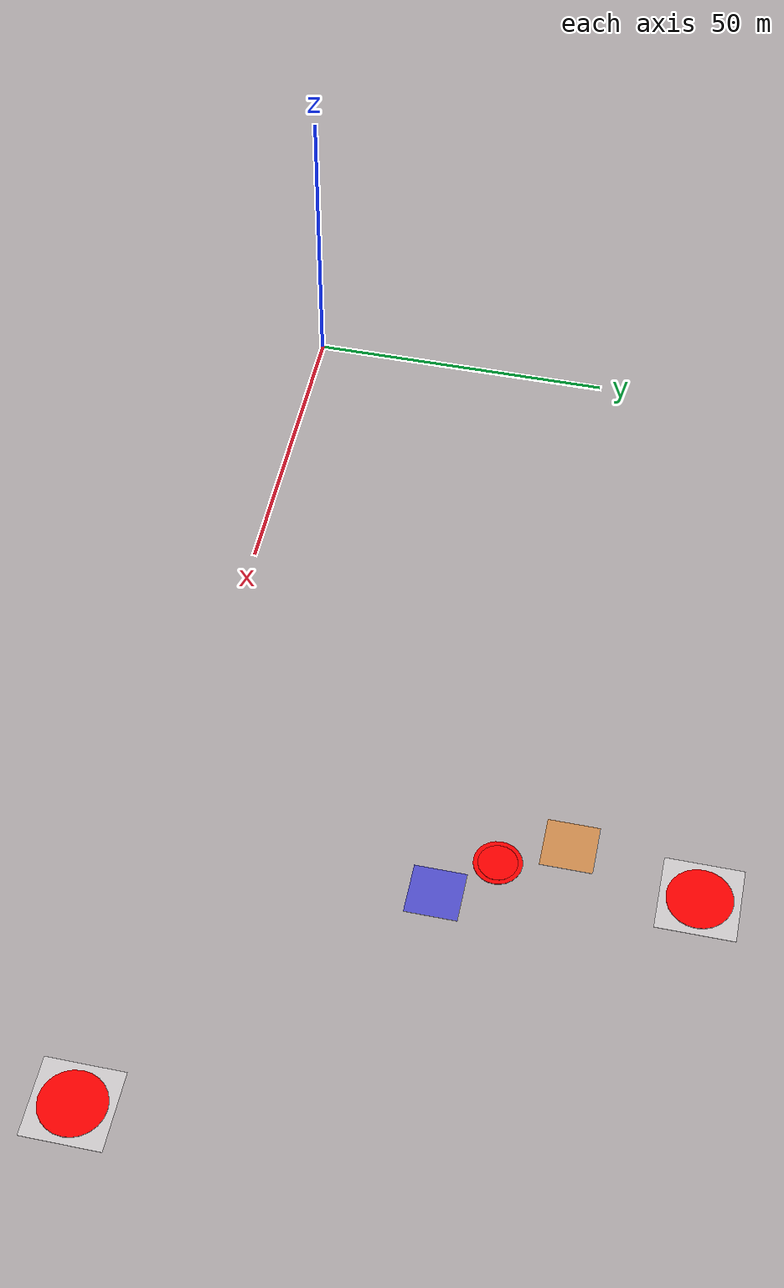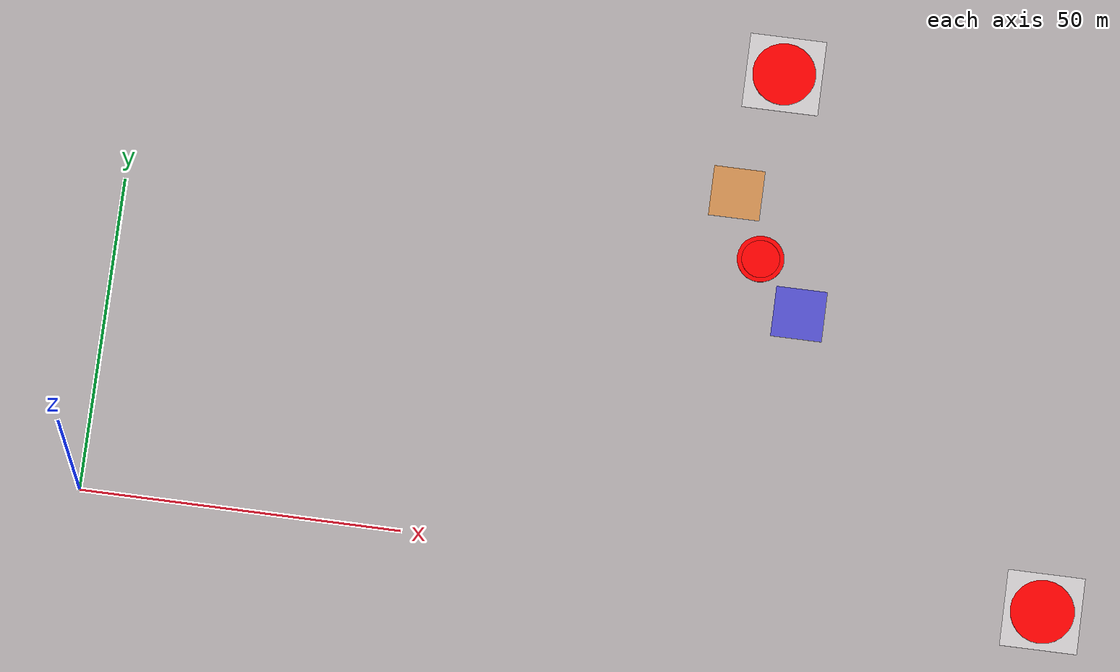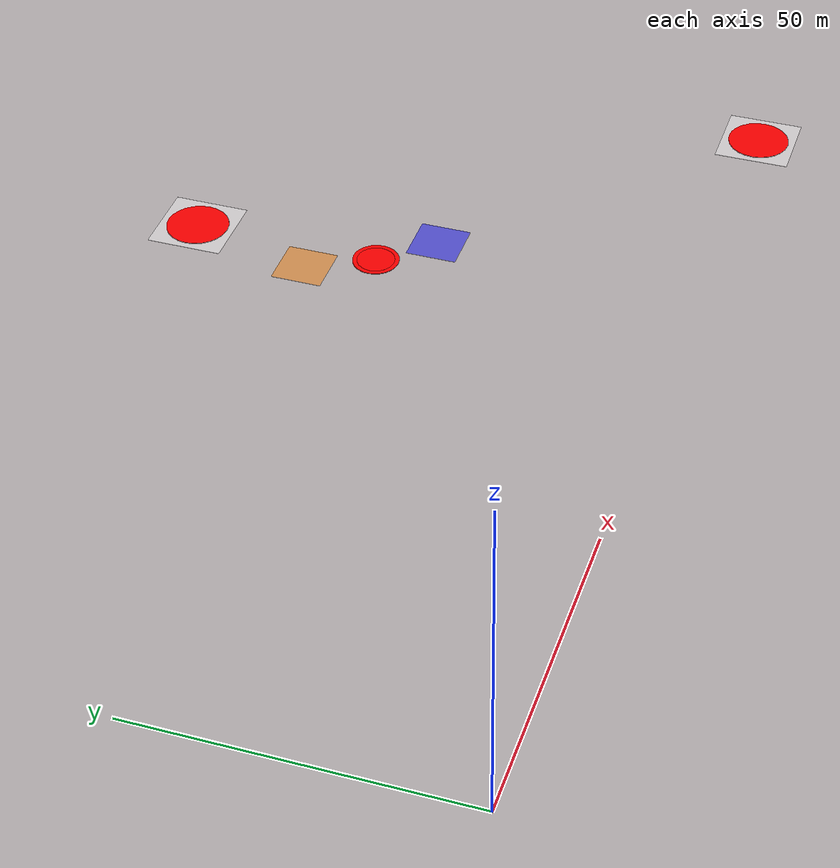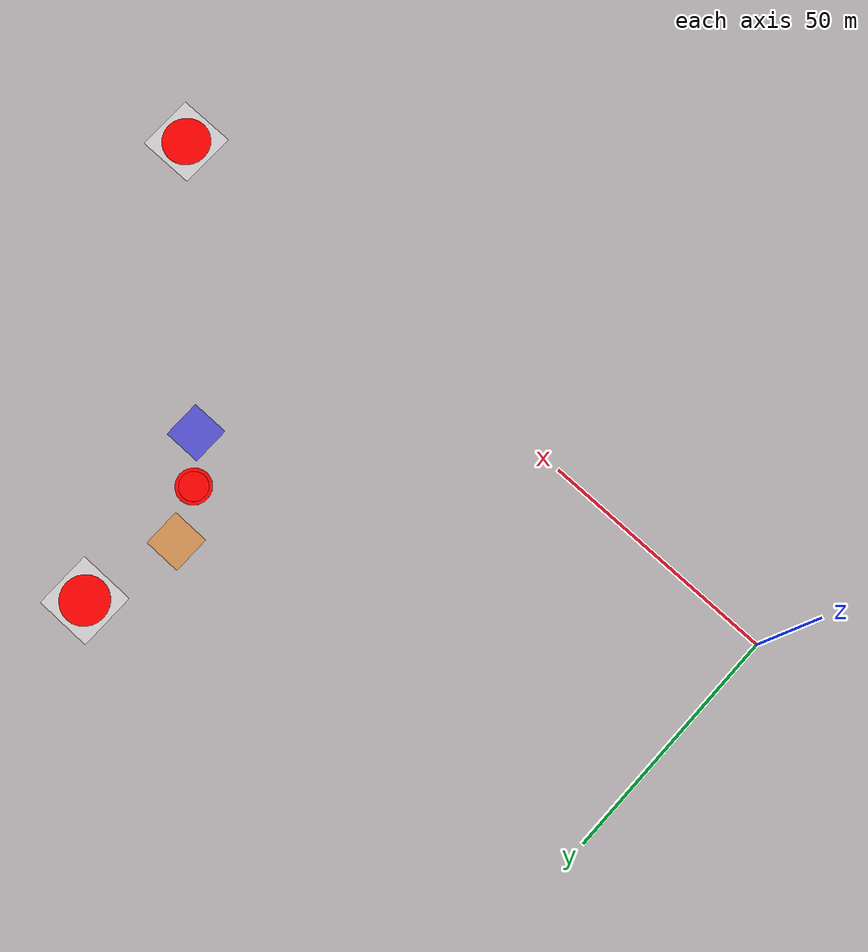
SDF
<sdf version="1.9">
 <world name="iris_runway">
  <physics name="1ms" type="ignore">
   <max_step_size>0.001</max_step_size>
   <real_time_factor>1</real_time_factor>
  </physics>
  <plugin filename="gz-sim-physics-system" name="gz::sim::systems::Physics"/>
  <plugin filename="gz-sim-sensors-system" name="gz::sim::systems::Sensors">
   <render_engine>ogre2</render_engine>
  </plugin>
  <plugin filename="gz-sim-user-commands-system" name="gz::sim::systems::UserCommands"/>
  <plugin filename="gz-sim-scene-broadcaster-system" name="gz::sim::systems::SceneBroadcaster"/>
  <plugin filename="gz-sim-air-pressure-system" name="gz::sim::systems::AirPressure"/>
  <plugin filename="gz-sim-air-speed-system" name="gz::sim::systems::AirSpeed"/>
  <plugin filename="gz-sim-altimeter-system" name="gz::sim::systems::Altimeter"/>
  <plugin filename="gz-sim-imu-system" name="gz::sim::systems::Imu"/>
  <plugin filename="gz-sim-magnetometer-system" name="gz::sim::systems::Magnetometer"/>
  <plugin filename="gz-sim-navsat-system" name="gz::sim::systems::NavSat"/>
  <scene><ambient>1.0 1.0 1.0</ambient><background>0.8 0.8 0.8</background></scene>
  <spherical_coordinates>
   <latitude_deg>-35.363262</latitude_deg>
   <longitude_deg>149.165237</longitude_deg>
   <elevation>10.0</elevation>
   <heading_deg>0</heading_deg>
   <surface_model>EARTH_WGS84</surface_model>
  </spherical_coordinates>
  <gravity>0 0 -9.8</gravity>
  <magnetic_field>5.5645e-06 2.28758e-05 -4.23884e-05</magnetic_field>
  <atmosphere type="adiabatic"/>
  <model name="helipad">
   <link name="background_link">
    <collision name="background_collision">
     <geometry><cylinder><radius>4</radius><length>0.11</length></cylinder></geometry>
    </collision>
    <visual name="background_visual_H1">
     <geometry><cylinder><radius>3.7</radius><length>0.1</length></cylinder></geometry>
     <material>
      <ambient>1 0 0 1</ambient>
      <diffuse>1 0 0 1</diffuse>
      <specular>0 0 0 1</specular>
      <emissive>0 0 0 0</emissive>
     </material>
     <pose>100 50 0 0 0 0</pose>
    </visual>
   </link>
   <link name="h_letter">
    <collision name="h_letter_collision">
     <geometry><cylinder><radius>3</radius><length>0.12</length></cylinder></geometry>
    </collision>
    <visual name="h_letter_visual">
     <geometry><cylinder><radius>3</radius><length>0.12</length></cylinder></geometry>
     <material>
      <ambient>1 0 0 1</ambient>
      <diffuse>1 0 0 1</diffuse>
      <specular>0 0 0 1</specular>
      <emissive>0 0 0 0</emissive>
     </material>
     <pose>100 50 0 0 0 0</pose>
    </visual>
   </link>
   <link name="hotspots">
    <visual name="background_visual_H5">
     <geometry><cylinder><radius>5</radius><length>0.1</length></cylinder></geometry>
     <material>
      <ambient>1 0 0 1</ambient>
      <diffuse>1 0 0 1</diffuse>
      <specular>0 0 0 1</specular>
      <emissive>0 0 0 0</emissive>
     </material>
     <pose>150 0 0.1 0 0 0</pose>
    </visual>
    <visual name="white_box_around_red_circle_H5">
     <geometry><box><size>12 12 0.1</size></box></geometry>
     <material>
      <ambient>1 1 1 0.5</ambient>
      <diffuse>1 1 1 0.5</diffuse>
      <specular>1 1 1 0.5</specular>
      <emissive>1 1 1 0</emissive>
     </material>
     <pose>150 0 0.06 0 0 0</pose>
    </visual>
    <visual name="boxyellow_51">
     <geometry><box><size>8 8 0.1</size></box></geometry>
     <material>
      <ambient>1 0.5 0 0.5</ambient>
      <diffuse>1 0.5 0 0.5</diffuse>
      <specular>1 0.5 0 0.5</specular>
      <emissive>1 0.5 0 0</emissive>
     </material>
     <pose>95 60 0.1 0 0 0</pose>
    </visual>
    <visual name="boxblue107_51">
     <geometry><box><size>8 8 0.1</size></box></geometry>
     <material>
      <ambient>0 0 1 0.5</ambient>
      <diffuse>0 0 1 0.5</diffuse>
      <specular>0 0 1 0.5</specular>
      <emissive>0 0 1 0</emissive>
     </material>
     <pose>107 42 0.1 0 0 0</pose>
    </visual>
   </link>
   <link name="hotspot_6">
    <visual name="background_visual_H6">
     <geometry><cylinder><radius>5</radius><length>0.1</length></cylinder></geometry>
     <material>
      <ambient>1 0 0 1</ambient>
      <diffuse>1 0 0 1</diffuse>
      <specular>0 0 0 1</specular>
      <emissive>0 0 0 0</emissive>
     </material>
     <pose>100 80 0.1 0 0 0</pose>
    </visual>
    <visual name="white_box_around_red_circle_H6">
     <geometry><box><size>12 12 0.1</size></box></geometry>
     <material>
      <ambient>1 1 1 0.5</ambient>
      <diffuse>1 1 1 0.5</diffuse>
      <specular>1 1 1 0.5</specular>
      <emissive>1 1 1 0</emissive>
     </material>
     <pose>100 80 0.06 0 0 0</pose>
    </visual>
   </link>
  </model>
  <model name="axes">
   <static>true</static>
   <link name="link">
    <visual name="r">
     <cast_shadows>false</cast_shadows>
     <pose>5 0 0.10000000000000001 0 0 0</pose>
     <geometry><box><size>10 0.01 0.01</size></box></geometry>
     <material>
      <ambient>1 0 0 0.800000012</ambient>
      <diffuse>1 0 0 0.800000012</diffuse>
      <emissive>1 0 0 0.800000012</emissive>
      <specular>0.5 0.5 0.5 0.800000012</specular>
     </material>
    </visual>
    <visual name="g">
     <cast_shadows>false</cast_shadows>
     <pose>0 5 0.10000000000000001 0 0 0</pose>
     <geometry><box><size>0.01 10 0.01</size></box></geometry>
     <material>
      <ambient>0 1 0 0.800000012</ambient>
      <diffuse>0 1 0 0.800000012</diffuse>
      <emissive>0 1 0 0.800000012</emissive>
      <specular>0.5 0.5 0.5 0.800000012</specular>
     </material>
    </visual>
    <visual name="b">
     <cast_shadows>false</cast_shadows>
     <pose>0 0 5.0999999999999996 0 0 0</pose>
     <geometry><box><size>0.01 0.01 10</size></box></geometry>
     <material>
      <ambient>0 0 1 0.800000012</ambient>
      <diffuse>0 0 1 0.800000012</diffuse>
      <emissive>0 0 1 0.800000012</emissive>
      <specular>0.5 0.5 0.5 0.800000012</specular>
     </material>
    </visual>
    <sensor name="navsat_sensor" type="navsat"><always_on>true</always_on><update_rate>1</update_rate></sensor>
    <inertial>
     <mass>1</mass>
     <inertia><ixx>1</ixx><ixy>0</ixy><ixz>0</ixz><iyy>1</iyy><iyz>0</iyz><izz>1</izz></inertia>
    </inertial>
   </link>
  </model>
  <light name="sun" type="directional">
   <pose>0 0 10 0 0 0</pose>
   <intensity>1</intensity>
   <direction>-0.5 0.10000000000000001 -0.90000000000000002</direction>
   <diffuse>0.800000012 0.800000012 0.800000012 1</diffuse>
   <specular>0.800000012 0.800000012 0.800000012 1</specular>
   <attenuation>
    <range>1000</range>
    <linear>0.01</linear>
    <constant>0.90000000000000002</constant>
    <quadratic>0.001</quadratic>
   </attenuation>
   <spot><inner_angle>0</inner_angle><outer_angle>0</outer_angle><falloff>0</falloff></spot>
  </light>
 </world>
</sdf>
